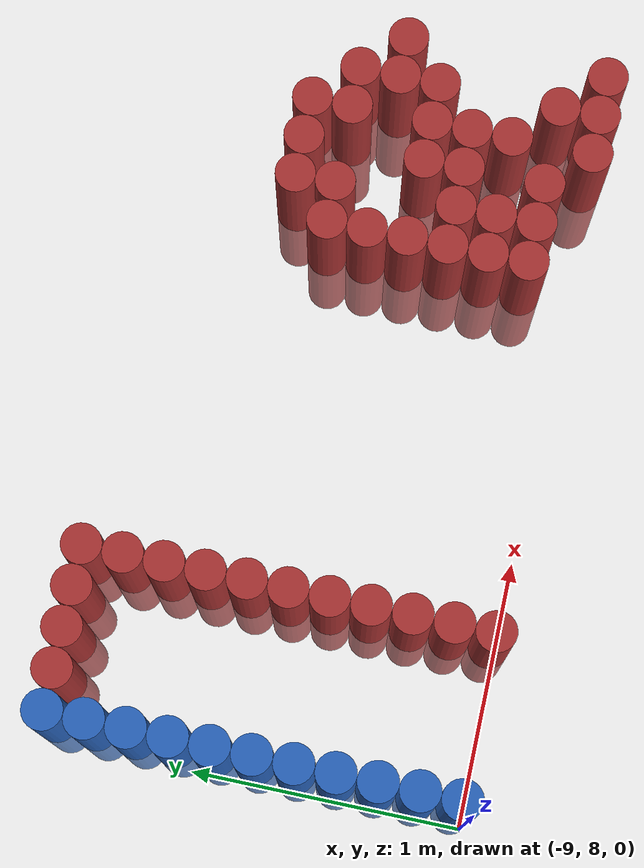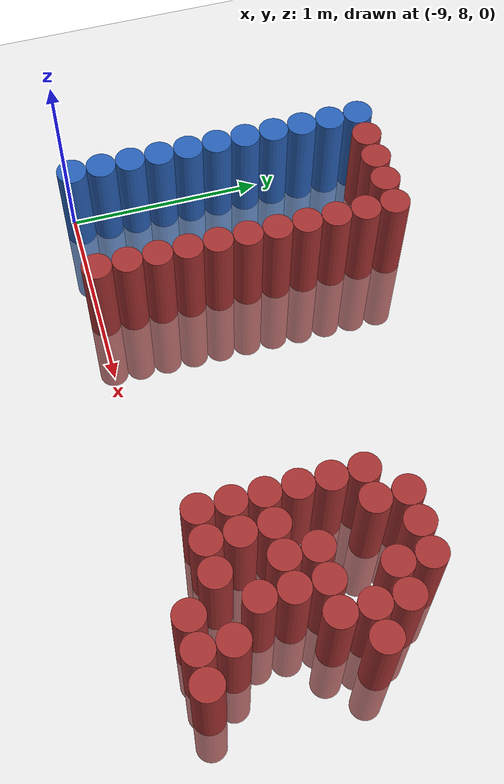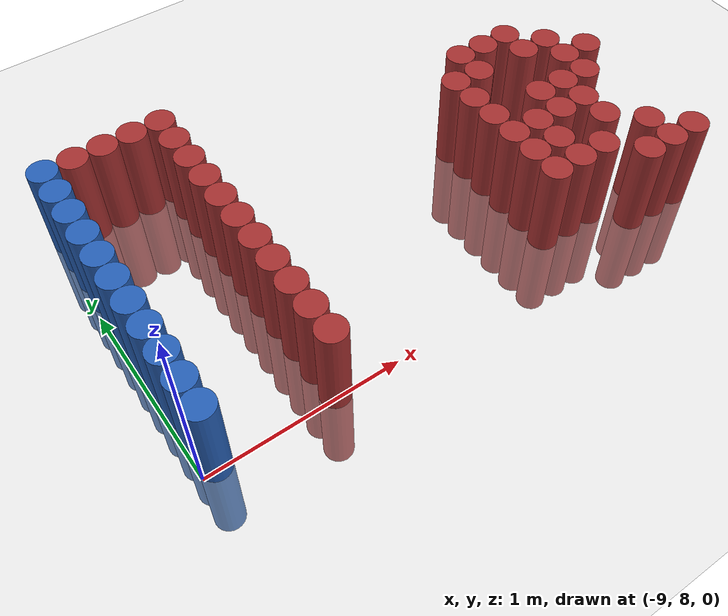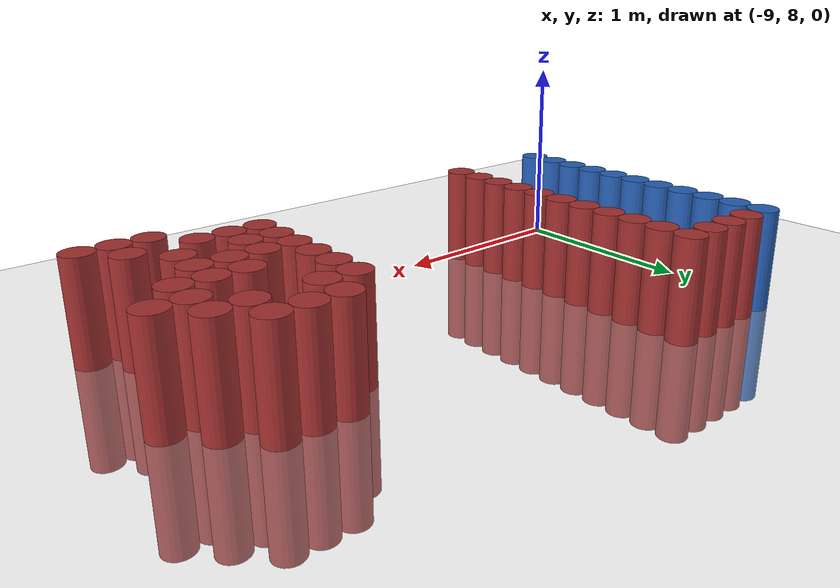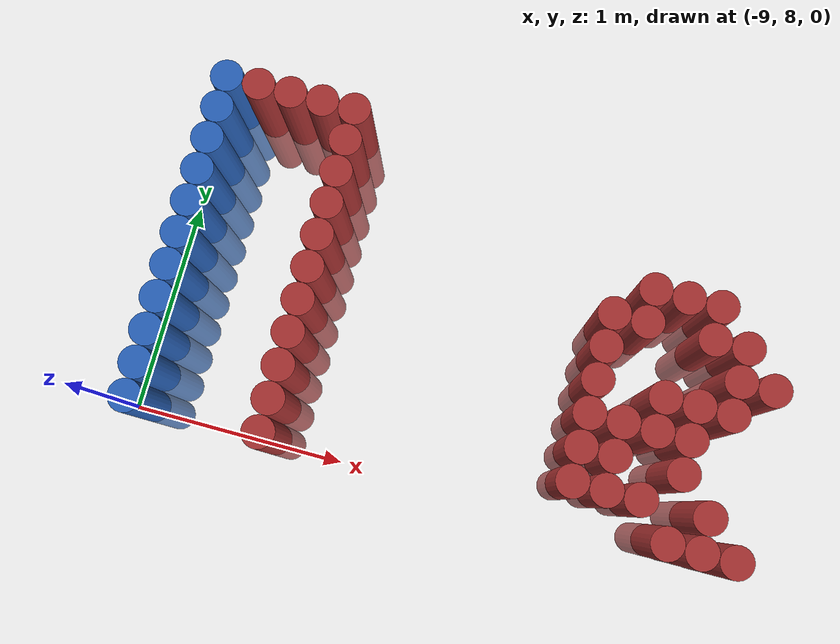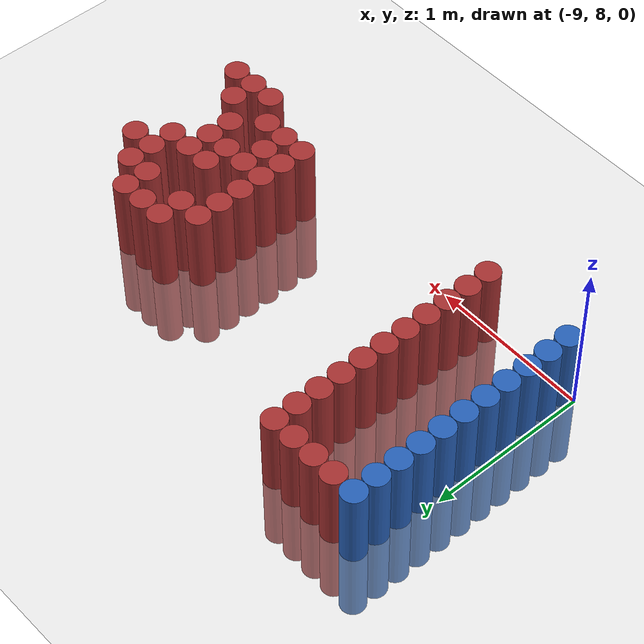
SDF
<sdf version="1.6">
 <world name="default">
  <model name="ground_plane">
   <static>1</static>
   <link name="link">
    <collision name="collision">
     <geometry><plane><normal>0 0 1</normal><size>100 100</size></plane></geometry>
     <surface><friction><ode><mu>100</mu><mu2>50</mu2></ode></friction></surface>
    </collision>
    <visual name="visual">
     <cast_shadows>0</cast_shadows>
     <geometry><plane><normal>0 0 1</normal><size>100 100</size></plane></geometry>
     <material>
      <script><uri>file://media/materials/scripts/gazebo.material</uri><name>Gazebo/Grey</name></script>
     </material>
    </visual>
   </link>
  </model>
  <model name="unit_cylinder_144">
   <static>1</static>
   <pose>-8.925000 8.025000 0.000000 0.000000 0.000000 0.000000</pose>
   <link name="link">
    <inertial>
     <mass>1</mass>
     <inertia><ixx>0.145833</ixx><ixy>0</ixy><ixz>0</ixz><iyy>0.145833</iyy><iyz>0</iyz><izz>0.125</izz></inertia>
    </inertial>
    <collision name="collision">
     <geometry><cylinder><radius>0.075000</radius><length>1</length></cylinder></geometry>
    </collision>
    <visual name="visual">
     <geometry><cylinder><radius>0.075000</radius><length>1</length></cylinder></geometry>
     <material>
      <ambient>0.152000 0.379000 0.720000 1</ambient>
      <diffuse>0.152000 0.379000 0.720000 1</diffuse>
     </material>
     <material>
      <script><name>Gazebo/Grey</name><uri>file://media/materials/scripts/gazebo.material</uri></script>
     </material>
    </visual>
   </link>
  </model>
  <model name="unit_cylinder_145">
   <static>1</static>
   <pose>-8.925000 8.175000 0.000000 0.000000 0.000000 0.000000</pose>
   <link name="link">
    <inertial>
     <mass>1</mass>
     <inertia><ixx>0.145833</ixx><ixy>0</ixy><ixz>0</ixz><iyy>0.145833</iyy><iyz>0</iyz><izz>0.125</izz></inertia>
    </inertial>
    <collision name="collision">
     <geometry><cylinder><radius>0.075000</radius><length>1</length></cylinder></geometry>
    </collision>
    <visual name="visual">
     <geometry><cylinder><radius>0.075000</radius><length>1</length></cylinder></geometry>
     <material>
      <ambient>0.152000 0.379000 0.720000 1</ambient>
      <diffuse>0.152000 0.379000 0.720000 1</diffuse>
     </material>
     <material>
      <script><name>Gazebo/Grey</name><uri>file://media/materials/scripts/gazebo.material</uri></script>
     </material>
    </visual>
   </link>
  </model>
  <model name="unit_cylinder_146">
   <static>1</static>
   <pose>-8.925000 8.325000 0.000000 0.000000 0.000000 0.000000</pose>
   <link name="link">
    <inertial>
     <mass>1</mass>
     <inertia><ixx>0.145833</ixx><ixy>0</ixy><ixz>0</ixz><iyy>0.145833</iyy><iyz>0</iyz><izz>0.125</izz></inertia>
    </inertial>
    <collision name="collision">
     <geometry><cylinder><radius>0.075000</radius><length>1</length></cylinder></geometry>
    </collision>
    <visual name="visual">
     <geometry><cylinder><radius>0.075000</radius><length>1</length></cylinder></geometry>
     <material>
      <ambient>0.152000 0.379000 0.720000 1</ambient>
      <diffuse>0.152000 0.379000 0.720000 1</diffuse>
     </material>
     <material>
      <script><name>Gazebo/Grey</name><uri>file://media/materials/scripts/gazebo.material</uri></script>
     </material>
    </visual>
   </link>
  </model>
  <model name="unit_cylinder_147">
   <static>1</static>
   <pose>-8.925000 8.475000 0.000000 0.000000 0.000000 0.000000</pose>
   <link name="link">
    <inertial>
     <mass>1</mass>
     <inertia><ixx>0.145833</ixx><ixy>0</ixy><ixz>0</ixz><iyy>0.145833</iyy><iyz>0</iyz><izz>0.125</izz></inertia>
    </inertial>
    <collision name="collision">
     <geometry><cylinder><radius>0.075000</radius><length>1</length></cylinder></geometry>
    </collision>
    <visual name="visual">
     <geometry><cylinder><radius>0.075000</radius><length>1</length></cylinder></geometry>
     <material>
      <ambient>0.152000 0.379000 0.720000 1</ambient>
      <diffuse>0.152000 0.379000 0.720000 1</diffuse>
     </material>
     <material>
      <script><name>Gazebo/Grey</name><uri>file://media/materials/scripts/gazebo.material</uri></script>
     </material>
    </visual>
   </link>
  </model>
  <model name="unit_cylinder_148">
   <static>1</static>
   <pose>-8.925000 8.625000 0.000000 0.000000 0.000000 0.000000</pose>
   <link name="link">
    <inertial>
     <mass>1</mass>
     <inertia><ixx>0.145833</ixx><ixy>0</ixy><ixz>0</ixz><iyy>0.145833</iyy><iyz>0</iyz><izz>0.125</izz></inertia>
    </inertial>
    <collision name="collision">
     <geometry><cylinder><radius>0.075000</radius><length>1</length></cylinder></geometry>
    </collision>
    <visual name="visual">
     <geometry><cylinder><radius>0.075000</radius><length>1</length></cylinder></geometry>
     <material>
      <ambient>0.152000 0.379000 0.720000 1</ambient>
      <diffuse>0.152000 0.379000 0.720000 1</diffuse>
     </material>
     <material>
      <script><name>Gazebo/Grey</name><uri>file://media/materials/scripts/gazebo.material</uri></script>
     </material>
    </visual>
   </link>
  </model>
  <model name="unit_cylinder_149">
   <static>1</static>
   <pose>-8.925000 8.775000 0.000000 0.000000 0.000000 0.000000</pose>
   <link name="link">
    <inertial>
     <mass>1</mass>
     <inertia><ixx>0.145833</ixx><ixy>0</ixy><ixz>0</ixz><iyy>0.145833</iyy><iyz>0</iyz><izz>0.125</izz></inertia>
    </inertial>
    <collision name="collision">
     <geometry><cylinder><radius>0.075000</radius><length>1</length></cylinder></geometry>
    </collision>
    <visual name="visual">
     <geometry><cylinder><radius>0.075000</radius><length>1</length></cylinder></geometry>
     <material>
      <ambient>0.152000 0.379000 0.720000 1</ambient>
      <diffuse>0.152000 0.379000 0.720000 1</diffuse>
     </material>
     <material>
      <script><name>Gazebo/Grey</name><uri>file://media/materials/scripts/gazebo.material</uri></script>
     </material>
    </visual>
   </link>
  </model>
  <model name="unit_cylinder_150">
   <static>1</static>
   <pose>-8.925000 8.925000 0.000000 0.000000 0.000000 0.000000</pose>
   <link name="link">
    <inertial>
     <mass>1</mass>
     <inertia><ixx>0.145833</ixx><ixy>0</ixy><ixz>0</ixz><iyy>0.145833</iyy><iyz>0</iyz><izz>0.125</izz></inertia>
    </inertial>
    <collision name="collision">
     <geometry><cylinder><radius>0.075000</radius><length>1</length></cylinder></geometry>
    </collision>
    <visual name="visual">
     <geometry><cylinder><radius>0.075000</radius><length>1</length></cylinder></geometry>
     <material>
      <ambient>0.152000 0.379000 0.720000 1</ambient>
      <diffuse>0.152000 0.379000 0.720000 1</diffuse>
     </material>
     <material>
      <script><name>Gazebo/Grey</name><uri>file://media/materials/scripts/gazebo.material</uri></script>
     </material>
    </visual>
   </link>
  </model>
  <model name="unit_cylinder_151">
   <static>1</static>
   <pose>-8.925000 9.075000 0.000000 0.000000 0.000000 0.000000</pose>
   <link name="link">
    <inertial>
     <mass>1</mass>
     <inertia><ixx>0.145833</ixx><ixy>0</ixy><ixz>0</ixz><iyy>0.145833</iyy><iyz>0</iyz><izz>0.125</izz></inertia>
    </inertial>
    <collision name="collision">
     <geometry><cylinder><radius>0.075000</radius><length>1</length></cylinder></geometry>
    </collision>
    <visual name="visual">
     <geometry><cylinder><radius>0.075000</radius><length>1</length></cylinder></geometry>
     <material>
      <ambient>0.152000 0.379000 0.720000 1</ambient>
      <diffuse>0.152000 0.379000 0.720000 1</diffuse>
     </material>
     <material>
      <script><name>Gazebo/Grey</name><uri>file://media/materials/scripts/gazebo.material</uri></script>
     </material>
    </visual>
   </link>
  </model>
  <model name="unit_cylinder_152">
   <static>1</static>
   <pose>-8.925000 9.225000 0.000000 0.000000 0.000000 0.000000</pose>
   <link name="link">
    <inertial>
     <mass>1</mass>
     <inertia><ixx>0.145833</ixx><ixy>0</ixy><ixz>0</ixz><iyy>0.145833</iyy><iyz>0</iyz><izz>0.125</izz></inertia>
    </inertial>
    <collision name="collision">
     <geometry><cylinder><radius>0.075000</radius><length>1</length></cylinder></geometry>
    </collision>
    <visual name="visual">
     <geometry><cylinder><radius>0.075000</radius><length>1</length></cylinder></geometry>
     <material>
      <ambient>0.152000 0.379000 0.720000 1</ambient>
      <diffuse>0.152000 0.379000 0.720000 1</diffuse>
     </material>
     <material>
      <script><name>Gazebo/Grey</name><uri>file://media/materials/scripts/gazebo.material</uri></script>
     </material>
    </visual>
   </link>
  </model>
  <model name="unit_cylinder_153">
   <static>1</static>
   <pose>-8.925000 9.375000 0.000000 0.000000 0.000000 0.000000</pose>
   <link name="link">
    <inertial>
     <mass>1</mass>
     <inertia><ixx>0.145833</ixx><ixy>0</ixy><ixz>0</ixz><iyy>0.145833</iyy><iyz>0</iyz><izz>0.125</izz></inertia>
    </inertial>
    <collision name="collision">
     <geometry><cylinder><radius>0.075000</radius><length>1</length></cylinder></geometry>
    </collision>
    <visual name="visual">
     <geometry><cylinder><radius>0.075000</radius><length>1</length></cylinder></geometry>
     <material>
      <ambient>0.152000 0.379000 0.720000 1</ambient>
      <diffuse>0.152000 0.379000 0.720000 1</diffuse>
     </material>
     <material>
      <script><name>Gazebo/Grey</name><uri>file://media/materials/scripts/gazebo.material</uri></script>
     </material>
    </visual>
   </link>
  </model>
  <model name="unit_cylinder_154">
   <static>1</static>
   <pose>-8.925000 9.525000 0.000000 0.000000 0.000000 0.000000</pose>
   <link name="link">
    <inertial>
     <mass>1</mass>
     <inertia><ixx>0.145833</ixx><ixy>0</ixy><ixz>0</ixz><iyy>0.145833</iyy><iyz>0</iyz><izz>0.125</izz></inertia>
    </inertial>
    <collision name="collision">
     <geometry><cylinder><radius>0.075000</radius><length>1</length></cylinder></geometry>
    </collision>
    <visual name="visual">
     <geometry><cylinder><radius>0.075000</radius><length>1</length></cylinder></geometry>
     <material>
      <ambient>0.152000 0.379000 0.720000 1</ambient>
      <diffuse>0.152000 0.379000 0.720000 1</diffuse>
     </material>
     <material>
      <script><name>Gazebo/Grey</name><uri>file://media/materials/scripts/gazebo.material</uri></script>
     </material>
    </visual>
   </link>
  </model>
  <model name="unit_cylinder_156">
   <static>1</static>
   <pose>-8.775000 9.525000 0.000000 0.000000 0.000000 0.000000</pose>
   <link name="link">
    <inertial>
     <mass>1</mass>
     <inertia><ixx>0.145833</ixx><ixy>0</ixy><ixz>0</ixz><iyy>0.145833</iyy><iyz>0</iyz><izz>0.125</izz></inertia>
    </inertial>
    <collision name="collision">
     <geometry><cylinder><radius>0.075000</radius><length>1</length></cylinder></geometry>
    </collision>
    <visual name="visual">
     <geometry><cylinder><radius>0.075000</radius><length>1</length></cylinder></geometry>
     <material>
      <ambient>0.648000 0.192000 0.192000 1</ambient>
      <diffuse>0.648000 0.192000 0.192000 1</diffuse>
     </material>
     <material>
      <script><name>Gazebo/Grey</name><uri>file://media/materials/scripts/gazebo.material</uri></script>
     </material>
    </visual>
   </link>
  </model>
  <model name="unit_cylinder_158">
   <static>1</static>
   <pose>-8.625000 9.525000 0.000000 0.000000 0.000000 0.000000</pose>
   <link name="link">
    <inertial>
     <mass>1</mass>
     <inertia><ixx>0.145833</ixx><ixy>0</ixy><ixz>0</ixz><iyy>0.145833</iyy><iyz>0</iyz><izz>0.125</izz></inertia>
    </inertial>
    <collision name="collision">
     <geometry><cylinder><radius>0.075000</radius><length>1</length></cylinder></geometry>
    </collision>
    <visual name="visual">
     <geometry><cylinder><radius>0.075000</radius><length>1</length></cylinder></geometry>
     <material>
      <ambient>0.648000 0.192000 0.192000 1</ambient>
      <diffuse>0.648000 0.192000 0.192000 1</diffuse>
     </material>
     <material>
      <script><name>Gazebo/Grey</name><uri>file://media/materials/scripts/gazebo.material</uri></script>
     </material>
    </visual>
   </link>
  </model>
  <model name="unit_cylinder_160">
   <static>1</static>
   <pose>-8.475000 9.525000 0.000000 0.000000 0.000000 0.000000</pose>
   <link name="link">
    <inertial>
     <mass>1</mass>
     <inertia><ixx>0.145833</ixx><ixy>0</ixy><ixz>0</ixz><iyy>0.145833</iyy><iyz>0</iyz><izz>0.125</izz></inertia>
    </inertial>
    <collision name="collision">
     <geometry><cylinder><radius>0.075000</radius><length>1</length></cylinder></geometry>
    </collision>
    <visual name="visual">
     <geometry><cylinder><radius>0.075000</radius><length>1</length></cylinder></geometry>
     <material>
      <ambient>0.648000 0.192000 0.192000 1</ambient>
      <diffuse>0.648000 0.192000 0.192000 1</diffuse>
     </material>
     <material>
      <script><name>Gazebo/Grey</name><uri>file://media/materials/scripts/gazebo.material</uri></script>
     </material>
    </visual>
   </link>
  </model>
  <model name="unit_cylinder_170">
   <static>1</static>
   <pose>-8.325000 8.025000 0.000000 0.000000 0.000000 0.000000</pose>
   <link name="link">
    <inertial>
     <mass>1</mass>
     <inertia><ixx>0.145833</ixx><ixy>0</ixy><ixz>0</ixz><iyy>0.145833</iyy><iyz>0</iyz><izz>0.125</izz></inertia>
    </inertial>
    <collision name="collision">
     <geometry><cylinder><radius>0.075000</radius><length>1</length></cylinder></geometry>
    </collision>
    <visual name="visual">
     <geometry><cylinder><radius>0.075000</radius><length>1</length></cylinder></geometry>
     <material>
      <ambient>0.648000 0.192000 0.192000 1</ambient>
      <diffuse>0.648000 0.192000 0.192000 1</diffuse>
     </material>
     <material>
      <script><name>Gazebo/Grey</name><uri>file://media/materials/scripts/gazebo.material</uri></script>
     </material>
    </visual>
   </link>
  </model>
  <model name="unit_cylinder_171">
   <static>1</static>
   <pose>-8.325000 8.175000 0.000000 0.000000 0.000000 0.000000</pose>
   <link name="link">
    <inertial>
     <mass>1</mass>
     <inertia><ixx>0.145833</ixx><ixy>0</ixy><ixz>0</ixz><iyy>0.145833</iyy><iyz>0</iyz><izz>0.125</izz></inertia>
    </inertial>
    <collision name="collision">
     <geometry><cylinder><radius>0.075000</radius><length>1</length></cylinder></geometry>
    </collision>
    <visual name="visual">
     <geometry><cylinder><radius>0.075000</radius><length>1</length></cylinder></geometry>
     <material>
      <ambient>0.648000 0.192000 0.192000 1</ambient>
      <diffuse>0.648000 0.192000 0.192000 1</diffuse>
     </material>
     <material>
      <script><name>Gazebo/Grey</name><uri>file://media/materials/scripts/gazebo.material</uri></script>
     </material>
    </visual>
   </link>
  </model>
  <model name="unit_cylinder_172">
   <static>1</static>
   <pose>-8.325000 8.325000 0.000000 0.000000 0.000000 0.000000</pose>
   <link name="link">
    <inertial>
     <mass>1</mass>
     <inertia><ixx>0.145833</ixx><ixy>0</ixy><ixz>0</ixz><iyy>0.145833</iyy><iyz>0</iyz><izz>0.125</izz></inertia>
    </inertial>
    <collision name="collision">
     <geometry><cylinder><radius>0.075000</radius><length>1</length></cylinder></geometry>
    </collision>
    <visual name="visual">
     <geometry><cylinder><radius>0.075000</radius><length>1</length></cylinder></geometry>
     <material>
      <ambient>0.648000 0.192000 0.192000 1</ambient>
      <diffuse>0.648000 0.192000 0.192000 1</diffuse>
     </material>
     <material>
      <script><name>Gazebo/Grey</name><uri>file://media/materials/scripts/gazebo.material</uri></script>
     </material>
    </visual>
   </link>
  </model>
  <model name="unit_cylinder_173">
   <static>1</static>
   <pose>-8.325000 8.475000 0.000000 0.000000 0.000000 0.000000</pose>
   <link name="link">
    <inertial>
     <mass>1</mass>
     <inertia><ixx>0.145833</ixx><ixy>0</ixy><ixz>0</ixz><iyy>0.145833</iyy><iyz>0</iyz><izz>0.125</izz></inertia>
    </inertial>
    <collision name="collision">
     <geometry><cylinder><radius>0.075000</radius><length>1</length></cylinder></geometry>
    </collision>
    <visual name="visual">
     <geometry><cylinder><radius>0.075000</radius><length>1</length></cylinder></geometry>
     <material>
      <ambient>0.648000 0.192000 0.192000 1</ambient>
      <diffuse>0.648000 0.192000 0.192000 1</diffuse>
     </material>
     <material>
      <script><name>Gazebo/Grey</name><uri>file://media/materials/scripts/gazebo.material</uri></script>
     </material>
    </visual>
   </link>
  </model>
  <model name="unit_cylinder_174">
   <static>1</static>
   <pose>-8.325000 8.625000 0.000000 0.000000 0.000000 0.000000</pose>
   <link name="link">
    <inertial>
     <mass>1</mass>
     <inertia><ixx>0.145833</ixx><ixy>0</ixy><ixz>0</ixz><iyy>0.145833</iyy><iyz>0</iyz><izz>0.125</izz></inertia>
    </inertial>
    <collision name="collision">
     <geometry><cylinder><radius>0.075000</radius><length>1</length></cylinder></geometry>
    </collision>
    <visual name="visual">
     <geometry><cylinder><radius>0.075000</radius><length>1</length></cylinder></geometry>
     <material>
      <ambient>0.648000 0.192000 0.192000 1</ambient>
      <diffuse>0.648000 0.192000 0.192000 1</diffuse>
     </material>
     <material>
      <script><name>Gazebo/Grey</name><uri>file://media/materials/scripts/gazebo.material</uri></script>
     </material>
    </visual>
   </link>
  </model>
  <model name="unit_cylinder_175">
   <static>1</static>
   <pose>-8.325000 8.775000 0.000000 0.000000 0.000000 0.000000</pose>
   <link name="link">
    <inertial>
     <mass>1</mass>
     <inertia><ixx>0.145833</ixx><ixy>0</ixy><ixz>0</ixz><iyy>0.145833</iyy><iyz>0</iyz><izz>0.125</izz></inertia>
    </inertial>
    <collision name="collision">
     <geometry><cylinder><radius>0.075000</radius><length>1</length></cylinder></geometry>
    </collision>
    <visual name="visual">
     <geometry><cylinder><radius>0.075000</radius><length>1</length></cylinder></geometry>
     <material>
      <ambient>0.648000 0.192000 0.192000 1</ambient>
      <diffuse>0.648000 0.192000 0.192000 1</diffuse>
     </material>
     <material>
      <script><name>Gazebo/Grey</name><uri>file://media/materials/scripts/gazebo.material</uri></script>
     </material>
    </visual>
   </link>
  </model>
  <model name="unit_cylinder_176">
   <static>1</static>
   <pose>-8.325000 8.925000 0.000000 0.000000 0.000000 0.000000</pose>
   <link name="link">
    <inertial>
     <mass>1</mass>
     <inertia><ixx>0.145833</ixx><ixy>0</ixy><ixz>0</ixz><iyy>0.145833</iyy><iyz>0</iyz><izz>0.125</izz></inertia>
    </inertial>
    <collision name="collision">
     <geometry><cylinder><radius>0.075000</radius><length>1</length></cylinder></geometry>
    </collision>
    <visual name="visual">
     <geometry><cylinder><radius>0.075000</radius><length>1</length></cylinder></geometry>
     <material>
      <ambient>0.648000 0.192000 0.192000 1</ambient>
      <diffuse>0.648000 0.192000 0.192000 1</diffuse>
     </material>
     <material>
      <script><name>Gazebo/Grey</name><uri>file://media/materials/scripts/gazebo.material</uri></script>
     </material>
    </visual>
   </link>
  </model>
  <model name="unit_cylinder_177">
   <static>1</static>
   <pose>-8.325000 9.075000 0.000000 0.000000 0.000000 0.000000</pose>
   <link name="link">
    <inertial>
     <mass>1</mass>
     <inertia><ixx>0.145833</ixx><ixy>0</ixy><ixz>0</ixz><iyy>0.145833</iyy><iyz>0</iyz><izz>0.125</izz></inertia>
    </inertial>
    <collision name="collision">
     <geometry><cylinder><radius>0.075000</radius><length>1</length></cylinder></geometry>
    </collision>
    <visual name="visual">
     <geometry><cylinder><radius>0.075000</radius><length>1</length></cylinder></geometry>
     <material>
      <ambient>0.648000 0.192000 0.192000 1</ambient>
      <diffuse>0.648000 0.192000 0.192000 1</diffuse>
     </material>
     <material>
      <script><name>Gazebo/Grey</name><uri>file://media/materials/scripts/gazebo.material</uri></script>
     </material>
    </visual>
   </link>
  </model>
  <model name="unit_cylinder_178">
   <static>1</static>
   <pose>-8.325000 9.225000 0.000000 0.000000 0.000000 0.000000</pose>
   <link name="link">
    <inertial>
     <mass>1</mass>
     <inertia><ixx>0.145833</ixx><ixy>0</ixy><ixz>0</ixz><iyy>0.145833</iyy><iyz>0</iyz><izz>0.125</izz></inertia>
    </inertial>
    <collision name="collision">
     <geometry><cylinder><radius>0.075000</radius><length>1</length></cylinder></geometry>
    </collision>
    <visual name="visual">
     <geometry><cylinder><radius>0.075000</radius><length>1</length></cylinder></geometry>
     <material>
      <ambient>0.648000 0.192000 0.192000 1</ambient>
      <diffuse>0.648000 0.192000 0.192000 1</diffuse>
     </material>
     <material>
      <script><name>Gazebo/Grey</name><uri>file://media/materials/scripts/gazebo.material</uri></script>
     </material>
    </visual>
   </link>
  </model>
  <model name="unit_cylinder_179">
   <static>1</static>
   <pose>-8.325000 9.375000 0.000000 0.000000 0.000000 0.000000</pose>
   <link name="link">
    <inertial>
     <mass>1</mass>
     <inertia><ixx>0.145833</ixx><ixy>0</ixy><ixz>0</ixz><iyy>0.145833</iyy><iyz>0</iyz><izz>0.125</izz></inertia>
    </inertial>
    <collision name="collision">
     <geometry><cylinder><radius>0.075000</radius><length>1</length></cylinder></geometry>
    </collision>
    <visual name="visual">
     <geometry><cylinder><radius>0.075000</radius><length>1</length></cylinder></geometry>
     <material>
      <ambient>0.648000 0.192000 0.192000 1</ambient>
      <diffuse>0.648000 0.192000 0.192000 1</diffuse>
     </material>
     <material>
      <script><name>Gazebo/Grey</name><uri>file://media/materials/scripts/gazebo.material</uri></script>
     </material>
    </visual>
   </link>
  </model>
  <model name="unit_cylinder_180">
   <static>1</static>
   <pose>-8.325000 9.525000 0.000000 0.000000 0.000000 0.000000</pose>
   <link name="link">
    <inertial>
     <mass>1</mass>
     <inertia><ixx>0.145833</ixx><ixy>0</ixy><ixz>0</ixz><iyy>0.145833</iyy><iyz>0</iyz><izz>0.125</izz></inertia>
    </inertial>
    <collision name="collision">
     <geometry><cylinder><radius>0.075000</radius><length>1</length></cylinder></geometry>
    </collision>
    <visual name="visual">
     <geometry><cylinder><radius>0.075000</radius><length>1</length></cylinder></geometry>
     <material>
      <ambient>0.648000 0.192000 0.192000 1</ambient>
      <diffuse>0.648000 0.192000 0.192000 1</diffuse>
     </material>
     <material>
      <script><name>Gazebo/Grey</name><uri>file://media/materials/scripts/gazebo.material</uri></script>
     </material>
    </visual>
   </link>
  </model>
  <model name="unit_cylinder_209">
   <static>1</static>
   <pose>-6.975000 8.175000 0.000000 0.000000 0.000000 0.000000</pose>
   <link name="link">
    <inertial>
     <mass>1</mass>
     <inertia><ixx>0.145833</ixx><ixy>0</ixy><ixz>0</ixz><iyy>0.145833</iyy><iyz>0</iyz><izz>0.125</izz></inertia>
    </inertial>
    <collision name="collision">
     <geometry><cylinder><radius>0.075000</radius><length>1</length></cylinder></geometry>
    </collision>
    <visual name="visual">
     <geometry><cylinder><radius>0.075000</radius><length>1</length></cylinder></geometry>
     <material>
      <ambient>0.648000 0.192000 0.192000 1</ambient>
      <diffuse>0.648000 0.192000 0.192000 1</diffuse>
     </material>
     <material>
      <script><name>Gazebo/Grey</name><uri>file://media/materials/scripts/gazebo.material</uri></script>
     </material>
    </visual>
   </link>
  </model>
  <model name="unit_cylinder_210">
   <static>1</static>
   <pose>-6.975000 8.325000 0.000000 0.000000 0.000000 0.000000</pose>
   <link name="link">
    <inertial>
     <mass>1</mass>
     <inertia><ixx>0.145833</ixx><ixy>0</ixy><ixz>0</ixz><iyy>0.145833</iyy><iyz>0</iyz><izz>0.125</izz></inertia>
    </inertial>
    <collision name="collision">
     <geometry><cylinder><radius>0.075000</radius><length>1</length></cylinder></geometry>
    </collision>
    <visual name="visual">
     <geometry><cylinder><radius>0.075000</radius><length>1</length></cylinder></geometry>
     <material>
      <ambient>0.648000 0.192000 0.192000 1</ambient>
      <diffuse>0.648000 0.192000 0.192000 1</diffuse>
     </material>
     <material>
      <script><name>Gazebo/Grey</name><uri>file://media/materials/scripts/gazebo.material</uri></script>
     </material>
    </visual>
   </link>
  </model>
  <model name="unit_cylinder_211">
   <static>1</static>
   <pose>-6.975000 8.475000 0.000000 0.000000 0.000000 0.000000</pose>
   <link name="link">
    <inertial>
     <mass>1</mass>
     <inertia><ixx>0.145833</ixx><ixy>0</ixy><ixz>0</ixz><iyy>0.145833</iyy><iyz>0</iyz><izz>0.125</izz></inertia>
    </inertial>
    <collision name="collision">
     <geometry><cylinder><radius>0.075000</radius><length>1</length></cylinder></geometry>
    </collision>
    <visual name="visual">
     <geometry><cylinder><radius>0.075000</radius><length>1</length></cylinder></geometry>
     <material>
      <ambient>0.648000 0.192000 0.192000 1</ambient>
      <diffuse>0.648000 0.192000 0.192000 1</diffuse>
     </material>
     <material>
      <script><name>Gazebo/Grey</name><uri>file://media/materials/scripts/gazebo.material</uri></script>
     </material>
    </visual>
   </link>
  </model>
  <model name="unit_cylinder_212">
   <static>1</static>
   <pose>-6.975000 8.625000 0.000000 0.000000 0.000000 0.000000</pose>
   <link name="link">
    <inertial>
     <mass>1</mass>
     <inertia><ixx>0.145833</ixx><ixy>0</ixy><ixz>0</ixz><iyy>0.145833</iyy><iyz>0</iyz><izz>0.125</izz></inertia>
    </inertial>
    <collision name="collision">
     <geometry><cylinder><radius>0.075000</radius><length>1</length></cylinder></geometry>
    </collision>
    <visual name="visual">
     <geometry><cylinder><radius>0.075000</radius><length>1</length></cylinder></geometry>
     <material>
      <ambient>0.648000 0.192000 0.192000 1</ambient>
      <diffuse>0.648000 0.192000 0.192000 1</diffuse>
     </material>
     <material>
      <script><name>Gazebo/Grey</name><uri>file://media/materials/scripts/gazebo.material</uri></script>
     </material>
    </visual>
   </link>
  </model>
  <model name="unit_cylinder_213">
   <static>1</static>
   <pose>-6.975000 8.775000 0.000000 0.000000 0.000000 0.000000</pose>
   <link name="link">
    <inertial>
     <mass>1</mass>
     <inertia><ixx>0.145833</ixx><ixy>0</ixy><ixz>0</ixz><iyy>0.145833</iyy><iyz>0</iyz><izz>0.125</izz></inertia>
    </inertial>
    <collision name="collision">
     <geometry><cylinder><radius>0.075000</radius><length>1</length></cylinder></geometry>
    </collision>
    <visual name="visual">
     <geometry><cylinder><radius>0.075000</radius><length>1</length></cylinder></geometry>
     <material>
      <ambient>0.648000 0.192000 0.192000 1</ambient>
      <diffuse>0.648000 0.192000 0.192000 1</diffuse>
     </material>
     <material>
      <script><name>Gazebo/Grey</name><uri>file://media/materials/scripts/gazebo.material</uri></script>
     </material>
    </visual>
   </link>
  </model>
  <model name="unit_cylinder_214">
   <static>1</static>
   <pose>-6.975000 8.925000 0.000000 0.000000 0.000000 0.000000</pose>
   <link name="link">
    <inertial>
     <mass>1</mass>
     <inertia><ixx>0.145833</ixx><ixy>0</ixy><ixz>0</ixz><iyy>0.145833</iyy><iyz>0</iyz><izz>0.125</izz></inertia>
    </inertial>
    <collision name="collision">
     <geometry><cylinder><radius>0.075000</radius><length>1</length></cylinder></geometry>
    </collision>
    <visual name="visual">
     <geometry><cylinder><radius>0.075000</radius><length>1</length></cylinder></geometry>
     <material>
      <ambient>0.648000 0.192000 0.192000 1</ambient>
      <diffuse>0.648000 0.192000 0.192000 1</diffuse>
     </material>
     <material>
      <script><name>Gazebo/Grey</name><uri>file://media/materials/scripts/gazebo.material</uri></script>
     </material>
    </visual>
   </link>
  </model>
  <model name="unit_cylinder_217">
   <static>1</static>
   <pose>-6.825000 8.175000 0.000000 0.000000 0.000000 0.000000</pose>
   <link name="link">
    <inertial>
     <mass>1</mass>
     <inertia><ixx>0.145833</ixx><ixy>0</ixy><ixz>0</ixz><iyy>0.145833</iyy><iyz>0</iyz><izz>0.125</izz></inertia>
    </inertial>
    <collision name="collision">
     <geometry><cylinder><radius>0.075000</radius><length>1</length></cylinder></geometry>
    </collision>
    <visual name="visual">
     <geometry><cylinder><radius>0.075000</radius><length>1</length></cylinder></geometry>
     <material>
      <ambient>0.648000 0.192000 0.192000 1</ambient>
      <diffuse>0.648000 0.192000 0.192000 1</diffuse>
     </material>
     <material>
      <script><name>Gazebo/Grey</name><uri>file://media/materials/scripts/gazebo.material</uri></script>
     </material>
    </visual>
   </link>
  </model>
  <model name="unit_cylinder_218">
   <static>1</static>
   <pose>-6.825000 8.325000 0.000000 0.000000 0.000000 0.000000</pose>
   <link name="link">
    <inertial>
     <mass>1</mass>
     <inertia><ixx>0.145833</ixx><ixy>0</ixy><ixz>0</ixz><iyy>0.145833</iyy><iyz>0</iyz><izz>0.125</izz></inertia>
    </inertial>
    <collision name="collision">
     <geometry><cylinder><radius>0.075000</radius><length>1</length></cylinder></geometry>
    </collision>
    <visual name="visual">
     <geometry><cylinder><radius>0.075000</radius><length>1</length></cylinder></geometry>
     <material>
      <ambient>0.648000 0.192000 0.192000 1</ambient>
      <diffuse>0.648000 0.192000 0.192000 1</diffuse>
     </material>
     <material>
      <script><name>Gazebo/Grey</name><uri>file://media/materials/scripts/gazebo.material</uri></script>
     </material>
    </visual>
   </link>
  </model>
  <model name="unit_cylinder_219">
   <static>1</static>
   <pose>-6.825000 8.475000 0.000000 0.000000 0.000000 0.000000</pose>
   <link name="link">
    <inertial>
     <mass>1</mass>
     <inertia><ixx>0.145833</ixx><ixy>0</ixy><ixz>0</ixz><iyy>0.145833</iyy><iyz>0</iyz><izz>0.125</izz></inertia>
    </inertial>
    <collision name="collision">
     <geometry><cylinder><radius>0.075000</radius><length>1</length></cylinder></geometry>
    </collision>
    <visual name="visual">
     <geometry><cylinder><radius>0.075000</radius><length>1</length></cylinder></geometry>
     <material>
      <ambient>0.648000 0.192000 0.192000 1</ambient>
      <diffuse>0.648000 0.192000 0.192000 1</diffuse>
     </material>
     <material>
      <script><name>Gazebo/Grey</name><uri>file://media/materials/scripts/gazebo.material</uri></script>
     </material>
    </visual>
   </link>
  </model>
  <model name="unit_cylinder_220">
   <static>1</static>
   <pose>-6.825000 8.925000 0.000000 0.000000 0.000000 0.000000</pose>
   <link name="link">
    <inertial>
     <mass>1</mass>
     <inertia><ixx>0.145833</ixx><ixy>0</ixy><ixz>0</ixz><iyy>0.145833</iyy><iyz>0</iyz><izz>0.125</izz></inertia>
    </inertial>
    <collision name="collision">
     <geometry><cylinder><radius>0.075000</radius><length>1</length></cylinder></geometry>
    </collision>
    <visual name="visual">
     <geometry><cylinder><radius>0.075000</radius><length>1</length></cylinder></geometry>
     <material>
      <ambient>0.648000 0.192000 0.192000 1</ambient>
      <diffuse>0.648000 0.192000 0.192000 1</diffuse>
     </material>
     <material>
      <script><name>Gazebo/Grey</name><uri>file://media/materials/scripts/gazebo.material</uri></script>
     </material>
    </visual>
   </link>
  </model>
  <model name="unit_cylinder_221">
   <static>1</static>
   <pose>-6.825000 9.075000 0.000000 0.000000 0.000000 0.000000</pose>
   <link name="link">
    <inertial>
     <mass>1</mass>
     <inertia><ixx>0.145833</ixx><ixy>0</ixy><ixz>0</ixz><iyy>0.145833</iyy><iyz>0</iyz><izz>0.125</izz></inertia>
    </inertial>
    <collision name="collision">
     <geometry><cylinder><radius>0.075000</radius><length>1</length></cylinder></geometry>
    </collision>
    <visual name="visual">
     <geometry><cylinder><radius>0.075000</radius><length>1</length></cylinder></geometry>
     <material>
      <ambient>0.648000 0.192000 0.192000 1</ambient>
      <diffuse>0.648000 0.192000 0.192000 1</diffuse>
     </material>
     <material>
      <script><name>Gazebo/Grey</name><uri>file://media/materials/scripts/gazebo.material</uri></script>
     </material>
    </visual>
   </link>
  </model>
  <model name="unit_cylinder_225">
   <static>1</static>
   <pose>-6.675000 8.175000 0.000000 0.000000 0.000000 0.000000</pose>
   <link name="link">
    <inertial>
     <mass>1</mass>
     <inertia><ixx>0.145833</ixx><ixy>0</ixy><ixz>0</ixz><iyy>0.145833</iyy><iyz>0</iyz><izz>0.125</izz></inertia>
    </inertial>
    <collision name="collision">
     <geometry><cylinder><radius>0.075000</radius><length>1</length></cylinder></geometry>
    </collision>
    <visual name="visual">
     <geometry><cylinder><radius>0.075000</radius><length>1</length></cylinder></geometry>
     <material>
      <ambient>0.648000 0.192000 0.192000 1</ambient>
      <diffuse>0.648000 0.192000 0.192000 1</diffuse>
     </material>
     <material>
      <script><name>Gazebo/Grey</name><uri>file://media/materials/scripts/gazebo.material</uri></script>
     </material>
    </visual>
   </link>
  </model>
  <model name="unit_cylinder_226">
   <static>1</static>
   <pose>-6.675000 8.475000 0.000000 0.000000 0.000000 0.000000</pose>
   <link name="link">
    <inertial>
     <mass>1</mass>
     <inertia><ixx>0.145833</ixx><ixy>0</ixy><ixz>0</ixz><iyy>0.145833</iyy><iyz>0</iyz><izz>0.125</izz></inertia>
    </inertial>
    <collision name="collision">
     <geometry><cylinder><radius>0.075000</radius><length>1</length></cylinder></geometry>
    </collision>
    <visual name="visual">
     <geometry><cylinder><radius>0.075000</radius><length>1</length></cylinder></geometry>
     <material>
      <ambient>0.648000 0.192000 0.192000 1</ambient>
      <diffuse>0.648000 0.192000 0.192000 1</diffuse>
     </material>
     <material>
      <script><name>Gazebo/Grey</name><uri>file://media/materials/scripts/gazebo.material</uri></script>
     </material>
    </visual>
   </link>
  </model>
  <model name="unit_cylinder_227">
   <static>1</static>
   <pose>-6.675000 8.625000 0.000000 0.000000 0.000000 0.000000</pose>
   <link name="link">
    <inertial>
     <mass>1</mass>
     <inertia><ixx>0.145833</ixx><ixy>0</ixy><ixz>0</ixz><iyy>0.145833</iyy><iyz>0</iyz><izz>0.125</izz></inertia>
    </inertial>
    <collision name="collision">
     <geometry><cylinder><radius>0.075000</radius><length>1</length></cylinder></geometry>
    </collision>
    <visual name="visual">
     <geometry><cylinder><radius>0.075000</radius><length>1</length></cylinder></geometry>
     <material>
      <ambient>0.648000 0.192000 0.192000 1</ambient>
      <diffuse>0.648000 0.192000 0.192000 1</diffuse>
     </material>
     <material>
      <script><name>Gazebo/Grey</name><uri>file://media/materials/scripts/gazebo.material</uri></script>
     </material>
    </visual>
   </link>
  </model>
  <model name="unit_cylinder_228">
   <static>1</static>
   <pose>-6.675000 9.075000 0.000000 0.000000 0.000000 0.000000</pose>
   <link name="link">
    <inertial>
     <mass>1</mass>
     <inertia><ixx>0.145833</ixx><ixy>0</ixy><ixz>0</ixz><iyy>0.145833</iyy><iyz>0</iyz><izz>0.125</izz></inertia>
    </inertial>
    <collision name="collision">
     <geometry><cylinder><radius>0.075000</radius><length>1</length></cylinder></geometry>
    </collision>
    <visual name="visual">
     <geometry><cylinder><radius>0.075000</radius><length>1</length></cylinder></geometry>
     <material>
      <ambient>0.648000 0.192000 0.192000 1</ambient>
      <diffuse>0.648000 0.192000 0.192000 1</diffuse>
     </material>
     <material>
      <script><name>Gazebo/Grey</name><uri>file://media/materials/scripts/gazebo.material</uri></script>
     </material>
    </visual>
   </link>
  </model>
  <model name="unit_cylinder_233">
   <static>1</static>
   <pose>-6.525000 8.025000 0.000000 0.000000 0.000000 0.000000</pose>
   <link name="link">
    <inertial>
     <mass>1</mass>
     <inertia><ixx>0.145833</ixx><ixy>0</ixy><ixz>0</ixz><iyy>0.145833</iyy><iyz>0</iyz><izz>0.125</izz></inertia>
    </inertial>
    <collision name="collision">
     <geometry><cylinder><radius>0.075000</radius><length>1</length></cylinder></geometry>
    </collision>
    <visual name="visual">
     <geometry><cylinder><radius>0.075000</radius><length>1</length></cylinder></geometry>
     <material>
      <ambient>0.648000 0.192000 0.192000 1</ambient>
      <diffuse>0.648000 0.192000 0.192000 1</diffuse>
     </material>
     <material>
      <script><name>Gazebo/Grey</name><uri>file://media/materials/scripts/gazebo.material</uri></script>
     </material>
    </visual>
   </link>
  </model>
  <model name="unit_cylinder_234">
   <static>1</static>
   <pose>-6.525000 8.325000 0.000000 0.000000 0.000000 0.000000</pose>
   <link name="link">
    <inertial>
     <mass>1</mass>
     <inertia><ixx>0.145833</ixx><ixy>0</ixy><ixz>0</ixz><iyy>0.145833</iyy><iyz>0</iyz><izz>0.125</izz></inertia>
    </inertial>
    <collision name="collision">
     <geometry><cylinder><radius>0.075000</radius><length>1</length></cylinder></geometry>
    </collision>
    <visual name="visual">
     <geometry><cylinder><radius>0.075000</radius><length>1</length></cylinder></geometry>
     <material>
      <ambient>0.648000 0.192000 0.192000 1</ambient>
      <diffuse>0.648000 0.192000 0.192000 1</diffuse>
     </material>
     <material>
      <script><name>Gazebo/Grey</name><uri>file://media/materials/scripts/gazebo.material</uri></script>
     </material>
    </visual>
   </link>
  </model>
  <model name="unit_cylinder_235">
   <static>1</static>
   <pose>-6.525000 8.475000 0.000000 0.000000 0.000000 0.000000</pose>
   <link name="link">
    <inertial>
     <mass>1</mass>
     <inertia><ixx>0.145833</ixx><ixy>0</ixy><ixz>0</ixz><iyy>0.145833</iyy><iyz>0</iyz><izz>0.125</izz></inertia>
    </inertial>
    <collision name="collision">
     <geometry><cylinder><radius>0.075000</radius><length>1</length></cylinder></geometry>
    </collision>
    <visual name="visual">
     <geometry><cylinder><radius>0.075000</radius><length>1</length></cylinder></geometry>
     <material>
      <ambient>0.648000 0.192000 0.192000 1</ambient>
      <diffuse>0.648000 0.192000 0.192000 1</diffuse>
     </material>
     <material>
      <script><name>Gazebo/Grey</name><uri>file://media/materials/scripts/gazebo.material</uri></script>
     </material>
    </visual>
   </link>
  </model>
  <model name="unit_cylinder_236">
   <static>1</static>
   <pose>-6.525000 8.625000 0.000000 0.000000 0.000000 0.000000</pose>
   <link name="link">
    <inertial>
     <mass>1</mass>
     <inertia><ixx>0.145833</ixx><ixy>0</ixy><ixz>0</ixz><iyy>0.145833</iyy><iyz>0</iyz><izz>0.125</izz></inertia>
    </inertial>
    <collision name="collision">
     <geometry><cylinder><radius>0.075000</radius><length>1</length></cylinder></geometry>
    </collision>
    <visual name="visual">
     <geometry><cylinder><radius>0.075000</radius><length>1</length></cylinder></geometry>
     <material>
      <ambient>0.648000 0.192000 0.192000 1</ambient>
      <diffuse>0.648000 0.192000 0.192000 1</diffuse>
     </material>
     <material>
      <script><name>Gazebo/Grey</name><uri>file://media/materials/scripts/gazebo.material</uri></script>
     </material>
    </visual>
   </link>
  </model>
  <model name="unit_cylinder_237">
   <static>1</static>
   <pose>-6.525000 8.925000 0.000000 0.000000 0.000000 0.000000</pose>
   <link name="link">
    <inertial>
     <mass>1</mass>
     <inertia><ixx>0.145833</ixx><ixy>0</ixy><ixz>0</ixz><iyy>0.145833</iyy><iyz>0</iyz><izz>0.125</izz></inertia>
    </inertial>
    <collision name="collision">
     <geometry><cylinder><radius>0.075000</radius><length>1</length></cylinder></geometry>
    </collision>
    <visual name="visual">
     <geometry><cylinder><radius>0.075000</radius><length>1</length></cylinder></geometry>
     <material>
      <ambient>0.648000 0.192000 0.192000 1</ambient>
      <diffuse>0.648000 0.192000 0.192000 1</diffuse>
     </material>
     <material>
      <script><name>Gazebo/Grey</name><uri>file://media/materials/scripts/gazebo.material</uri></script>
     </material>
    </visual>
   </link>
  </model>
  <model name="unit_cylinder_238">
   <static>1</static>
   <pose>-6.525000 9.075000 0.000000 0.000000 0.000000 0.000000</pose>
   <link name="link">
    <inertial>
     <mass>1</mass>
     <inertia><ixx>0.145833</ixx><ixy>0</ixy><ixz>0</ixz><iyy>0.145833</iyy><iyz>0</iyz><izz>0.125</izz></inertia>
    </inertial>
    <collision name="collision">
     <geometry><cylinder><radius>0.075000</radius><length>1</length></cylinder></geometry>
    </collision>
    <visual name="visual">
     <geometry><cylinder><radius>0.075000</radius><length>1</length></cylinder></geometry>
     <material>
      <ambient>0.648000 0.192000 0.192000 1</ambient>
      <diffuse>0.648000 0.192000 0.192000 1</diffuse>
     </material>
     <material>
      <script><name>Gazebo/Grey</name><uri>file://media/materials/scripts/gazebo.material</uri></script>
     </material>
    </visual>
   </link>
  </model>
  <model name="unit_cylinder_245">
   <static>1</static>
   <pose>-6.375000 8.025000 0.000000 0.000000 0.000000 0.000000</pose>
   <link name="link">
    <inertial>
     <mass>1</mass>
     <inertia><ixx>0.145833</ixx><ixy>0</ixy><ixz>0</ixz><iyy>0.145833</iyy><iyz>0</iyz><izz>0.125</izz></inertia>
    </inertial>
    <collision name="collision">
     <geometry><cylinder><radius>0.075000</radius><length>1</length></cylinder></geometry>
    </collision>
    <visual name="visual">
     <geometry><cylinder><radius>0.075000</radius><length>1</length></cylinder></geometry>
     <material>
      <ambient>0.648000 0.192000 0.192000 1</ambient>
      <diffuse>0.648000 0.192000 0.192000 1</diffuse>
     </material>
     <material>
      <script><name>Gazebo/Grey</name><uri>file://media/materials/scripts/gazebo.material</uri></script>
     </material>
    </visual>
   </link>
  </model>
  <model name="unit_cylinder_246">
   <static>1</static>
   <pose>-6.375000 8.175000 0.000000 0.000000 0.000000 0.000000</pose>
   <link name="link">
    <inertial>
     <mass>1</mass>
     <inertia><ixx>0.145833</ixx><ixy>0</ixy><ixz>0</ixz><iyy>0.145833</iyy><iyz>0</iyz><izz>0.125</izz></inertia>
    </inertial>
    <collision name="collision">
     <geometry><cylinder><radius>0.075000</radius><length>1</length></cylinder></geometry>
    </collision>
    <visual name="visual">
     <geometry><cylinder><radius>0.075000</radius><length>1</length></cylinder></geometry>
     <material>
      <ambient>0.648000 0.192000 0.192000 1</ambient>
      <diffuse>0.648000 0.192000 0.192000 1</diffuse>
     </material>
     <material>
      <script><name>Gazebo/Grey</name><uri>file://media/materials/scripts/gazebo.material</uri></script>
     </material>
    </visual>
   </link>
  </model>
  <model name="unit_cylinder_247">
   <static>1</static>
   <pose>-6.375000 8.625000 0.000000 0.000000 0.000000 0.000000</pose>
   <link name="link">
    <inertial>
     <mass>1</mass>
     <inertia><ixx>0.145833</ixx><ixy>0</ixy><ixz>0</ixz><iyy>0.145833</iyy><iyz>0</iyz><izz>0.125</izz></inertia>
    </inertial>
    <collision name="collision">
     <geometry><cylinder><radius>0.075000</radius><length>1</length></cylinder></geometry>
    </collision>
    <visual name="visual">
     <geometry><cylinder><radius>0.075000</radius><length>1</length></cylinder></geometry>
     <material>
      <ambient>0.648000 0.192000 0.192000 1</ambient>
      <diffuse>0.648000 0.192000 0.192000 1</diffuse>
     </material>
     <material>
      <script><name>Gazebo/Grey</name><uri>file://media/materials/scripts/gazebo.material</uri></script>
     </material>
    </visual>
   </link>
  </model>
  <model name="unit_cylinder_248">
   <static>1</static>
   <pose>-6.375000 8.775000 0.000000 0.000000 0.000000 0.000000</pose>
   <link name="link">
    <inertial>
     <mass>1</mass>
     <inertia><ixx>0.145833</ixx><ixy>0</ixy><ixz>0</ixz><iyy>0.145833</iyy><iyz>0</iyz><izz>0.125</izz></inertia>
    </inertial>
    <collision name="collision">
     <geometry><cylinder><radius>0.075000</radius><length>1</length></cylinder></geometry>
    </collision>
    <visual name="visual">
     <geometry><cylinder><radius>0.075000</radius><length>1</length></cylinder></geometry>
     <material>
      <ambient>0.648000 0.192000 0.192000 1</ambient>
      <diffuse>0.648000 0.192000 0.192000 1</diffuse>
     </material>
     <material>
      <script><name>Gazebo/Grey</name><uri>file://media/materials/scripts/gazebo.material</uri></script>
     </material>
    </visual>
   </link>
  </model>
  <model name="unit_cylinder_249">
   <static>1</static>
   <pose>-6.375000 8.925000 0.000000 0.000000 0.000000 0.000000</pose>
   <link name="link">
    <inertial>
     <mass>1</mass>
     <inertia><ixx>0.145833</ixx><ixy>0</ixy><ixz>0</ixz><iyy>0.145833</iyy><iyz>0</iyz><izz>0.125</izz></inertia>
    </inertial>
    <collision name="collision">
     <geometry><cylinder><radius>0.075000</radius><length>1</length></cylinder></geometry>
    </collision>
    <visual name="visual">
     <geometry><cylinder><radius>0.075000</radius><length>1</length></cylinder></geometry>
     <material>
      <ambient>0.648000 0.192000 0.192000 1</ambient>
      <diffuse>0.648000 0.192000 0.192000 1</diffuse>
     </material>
     <material>
      <script><name>Gazebo/Grey</name><uri>file://media/materials/scripts/gazebo.material</uri></script>
     </material>
    </visual>
   </link>
  </model>
  <model name="unit_cylinder_257">
   <static>1</static>
   <pose>-6.225000 8.025000 0.000000 0.000000 0.000000 0.000000</pose>
   <link name="link">
    <inertial>
     <mass>1</mass>
     <inertia><ixx>0.145833</ixx><ixy>0</ixy><ixz>0</ixz><iyy>0.145833</iyy><iyz>0</iyz><izz>0.125</izz></inertia>
    </inertial>
    <collision name="collision">
     <geometry><cylinder><radius>0.075000</radius><length>1</length></cylinder></geometry>
    </collision>
    <visual name="visual">
     <geometry><cylinder><radius>0.075000</radius><length>1</length></cylinder></geometry>
     <material>
      <ambient>0.648000 0.192000 0.192000 1</ambient>
      <diffuse>0.648000 0.192000 0.192000 1</diffuse>
     </material>
     <material>
      <script><name>Gazebo/Grey</name><uri>file://media/materials/scripts/gazebo.material</uri></script>
     </material>
    </visual>
   </link>
  </model>
  <model name="unit_cylinder_258">
   <static>1</static>
   <pose>-6.225000 8.775000 0.000000 0.000000 0.000000 0.000000</pose>
   <link name="link">
    <inertial>
     <mass>1</mass>
     <inertia><ixx>0.145833</ixx><ixy>0</ixy><ixz>0</ixz><iyy>0.145833</iyy><iyz>0</iyz><izz>0.125</izz></inertia>
    </inertial>
    <collision name="collision">
     <geometry><cylinder><radius>0.075000</radius><length>1</length></cylinder></geometry>
    </collision>
    <visual name="visual">
     <geometry><cylinder><radius>0.075000</radius><length>1</length></cylinder></geometry>
     <material>
      <ambient>0.648000 0.192000 0.192000 1</ambient>
      <diffuse>0.648000 0.192000 0.192000 1</diffuse>
     </material>
     <material>
      <script><name>Gazebo/Grey</name><uri>file://media/materials/scripts/gazebo.material</uri></script>
     </material>
    </visual>
   </link>
  </model>
 </world>
</sdf>
